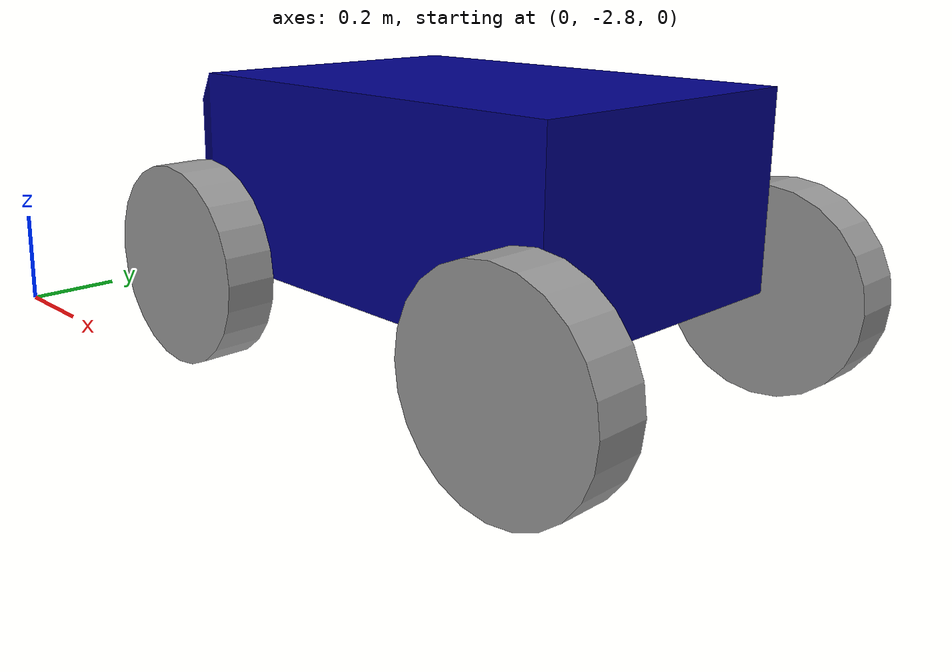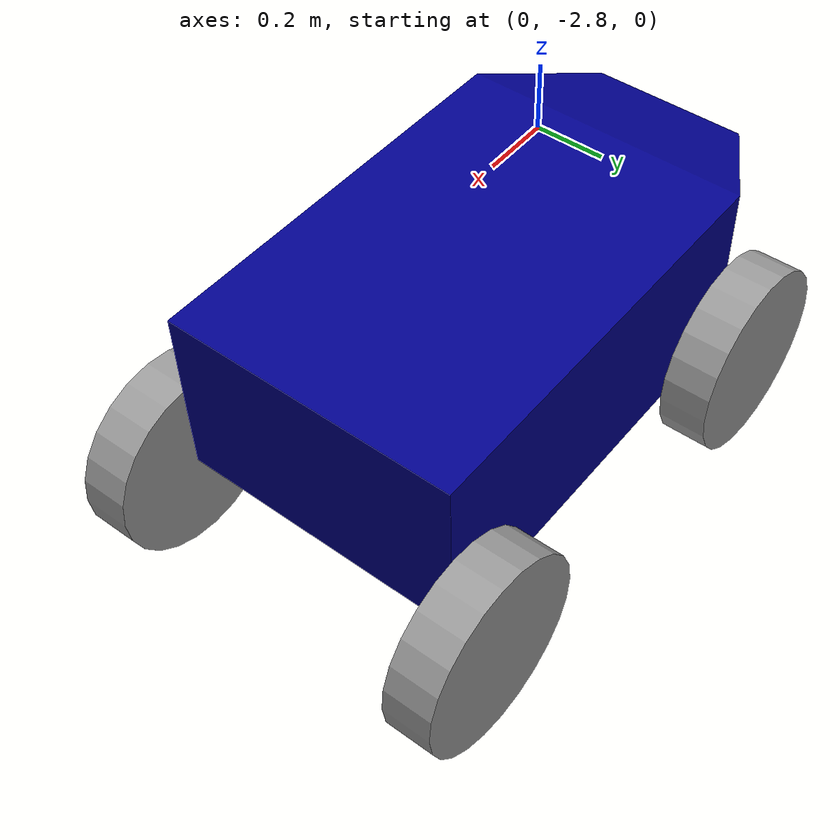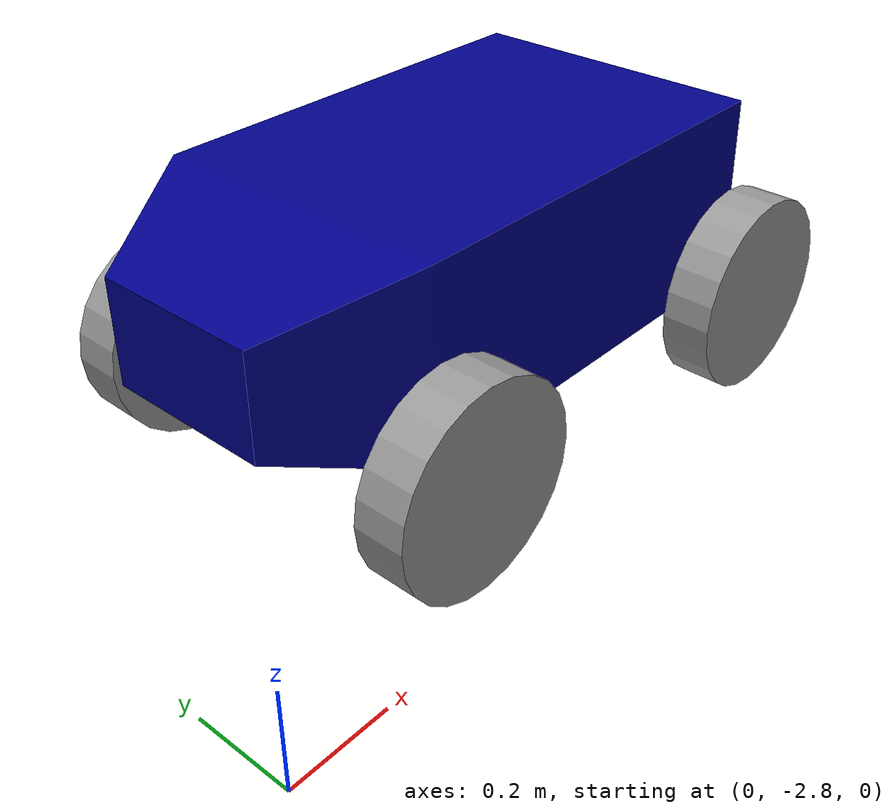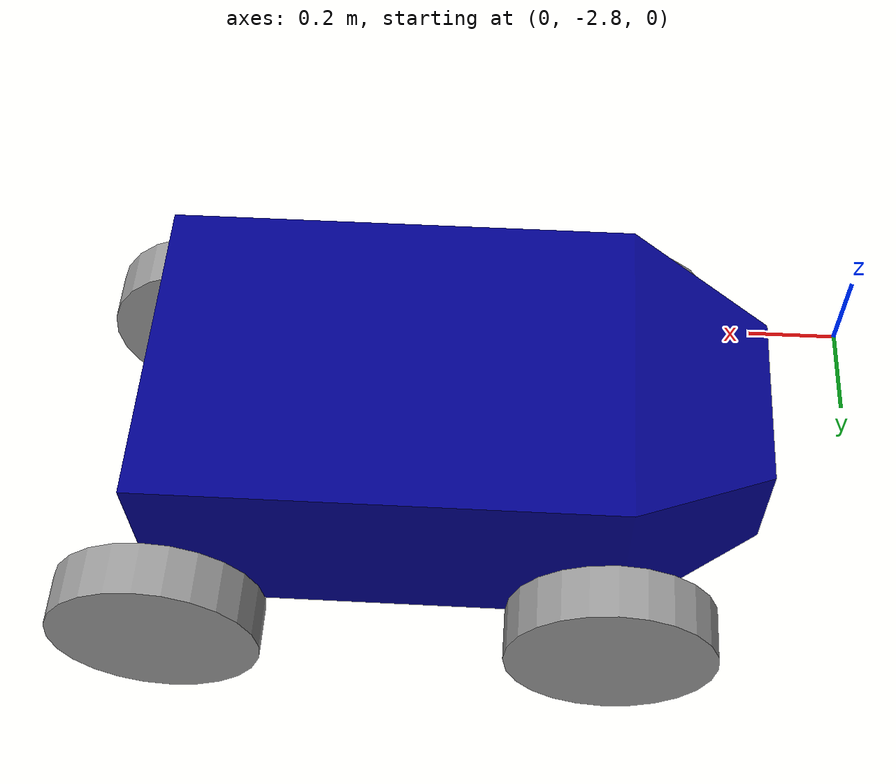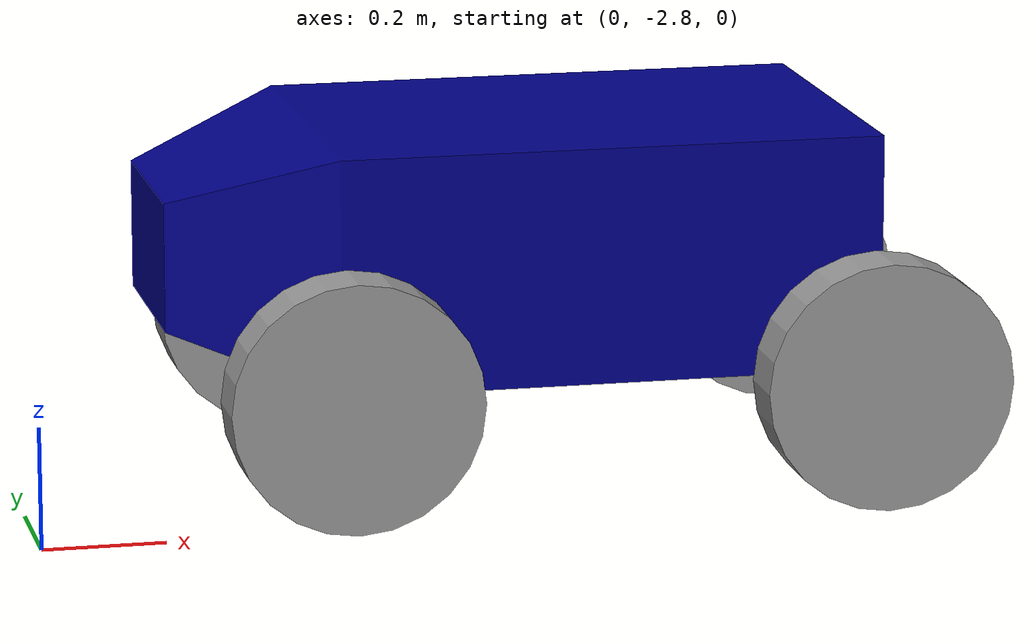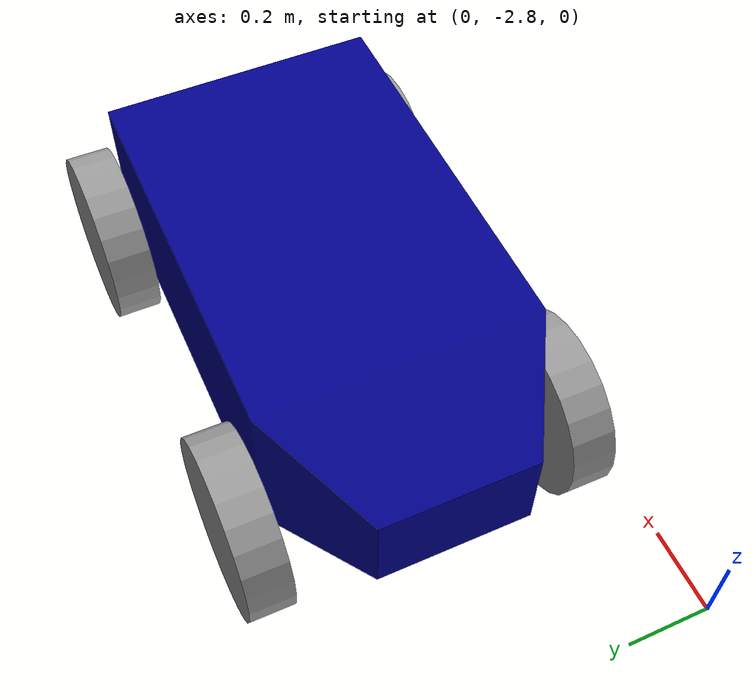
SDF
<?xml version='1.0'?>
<sdf version='1.6'>
  <model name='bot_submit'>
    <link name='link_0'>
      <inertial>
        <mass>1</mass>
        <inertia>
          <ixx>0.166667</ixx>
          <ixy>0</ixy>
          <ixz>0</ixz>
          <iyy>0.166667</iyy>
          <iyz>0</iyz>
          <izz>0.166667</izz>
        </inertia>
        <pose frame=''>0 0 0 0 -0 0</pose>
      </inertial>
      <pose frame=''>0.673498 -2.32623 0.29449 0 -0 0</pose>
      <gravity>1</gravity>
      <self_collide>0</self_collide>
      <kinematic>0</kinematic>
      <enable_wind>0</enable_wind>
      <visual name='visual'>
        <pose frame=''>0 0 0 0 -0 0</pose>
        <geometry>
          <mesh>
            <uri>/home/manjot/workspace/myrobot/model/chassy.dae</uri>
            <scale>0.1 0.1 0.1</scale>
          </mesh>
        </geometry>
        <material>
          <lighting>1</lighting>
          <script>
            <uri>file://media/materials/scripts/gazebo.material</uri>
            <name>Gazebo/Grey</name>
          </script>
          <ambient>0 0 0.545 1</ambient>
          <diffuse>0.7 0.7 0.7 1</diffuse>
          <specular>0.01 0.01 0.01 1</specular>
          <emissive>0 0 0 1</emissive>
          <shader type='vertex'>
            <normal_map>__default__</normal_map>
          </shader>
        </material>
        <transparency>0</transparency>
        <cast_shadows>1</cast_shadows>
      </visual>
      <collision name='collision'>
        <laser_retro>0</laser_retro>
        <max_contacts>10</max_contacts>
        <pose frame=''>0 0 0 0 -0 0</pose>
        <geometry>
          <mesh>
            <uri>/home/manjot/workspace/myrobot/model/chassy.dae</uri>
            <scale>0.1 0.1 0.1</scale>
          </mesh>
        </geometry>
        <surface>
          <friction>
            <ode>
              <mu>1</mu>
              <mu2>1</mu2>
              <fdir1>0 0 0</fdir1>
              <slip1>0</slip1>
              <slip2>0</slip2>
            </ode>
            <torsional>
              <coefficient>1</coefficient>
              <patch_radius>0</patch_radius>
              <surface_radius>0</surface_radius>
              <use_patch_radius>1</use_patch_radius>
              <ode>
                <slip>0</slip>
              </ode>
            </torsional>
          </friction>
          <bounce>
            <restitution_coefficient>0</restitution_coefficient>
            <threshold>1e+06</threshold>
          </bounce>
          <contact>
            <collide_without_contact>0</collide_without_contact>
            <collide_without_contact_bitmask>1</collide_without_contact_bitmask>
            <collide_bitmask>1</collide_bitmask>
            <ode>
              <soft_cfm>0</soft_cfm>
              <soft_erp>0.2</soft_erp>
              <kp>1e+13</kp>
              <kd>1</kd>
              <max_vel>0.01</max_vel>
              <min_depth>0</min_depth>
            </ode>
            <bullet>
              <split_impulse>1</split_impulse>
              <split_impulse_penetration_threshold>-0.01</split_impulse_penetration_threshold>
              <soft_cfm>0</soft_cfm>
              <soft_erp>0.2</soft_erp>
              <kp>1e+13</kp>
              <kd>1</kd>
            </bullet>
          </contact>
        </surface>
      </collision>
    </link>
    <link name='link_1'>
      <inertial>
        <mass>0.0183532</mass>
        <inertia>
          <ixx>0.00021776</ixx>
          <ixy>0</ixy>
          <ixz>0</ixz>
          <iyy>0.00021776</iyy>
          <iyz>0</iyz>
          <izz>0.00040197</izz>
        </inertia>
        <pose frame=''>0 0 0 0 -0 0</pose>
      </inertial>
      <pose frame=''>1.42416 -2.6605 0.162558 -1.5609 0 0</pose>
      <gravity>1</gravity>
      <self_collide>0</self_collide>
      <kinematic>0</kinematic>
      <enable_wind>0</enable_wind>
      <visual name='visual'>
        <pose frame=''>0 0 0 0 -0 0</pose>
        <geometry>
          <cylinder>
            <radius>0.209293</radius>
            <length>0.104734</length>
          </cylinder>
        </geometry>
        <material>
          <lighting>1</lighting>
          <script>
            <uri>file://media/materials/scripts/gazebo.material</uri>
            <name>Gazebo/Grey</name>
          </script>
          <shader type='vertex'>
            <normal_map>__default__</normal_map>
          </shader>
          <ambient>1 1 1 1</ambient>
          <diffuse>0.7 0.7 0.7 1</diffuse>
          <specular>0.01 0.01 0.01 1</specular>
          <emissive>0 0 0 1</emissive>
        </material>
        <transparency>0</transparency>
        <cast_shadows>1</cast_shadows>
      </visual>
      <collision name='collision'>
        <laser_retro>0</laser_retro>
        <max_contacts>10</max_contacts>
        <pose frame=''>0 0 0 0 -0 0</pose>
        <geometry>
          <cylinder>
            <radius>0.209293</radius>
            <length>0.104734</length>
          </cylinder>
        </geometry>
        <surface>
          <friction>
            <ode>
              <mu>1</mu>
              <mu2>1</mu2>
              <fdir1>0 0 0</fdir1>
              <slip1>0</slip1>
              <slip2>0</slip2>
            </ode>
            <torsional>
              <coefficient>1</coefficient>
              <patch_radius>0</patch_radius>
              <surface_radius>0</surface_radius>
              <use_patch_radius>1</use_patch_radius>
              <ode>
                <slip>0</slip>
              </ode>
            </torsional>
          </friction>
          <bounce>
            <restitution_coefficient>0</restitution_coefficient>
            <threshold>1e+06</threshold>
          </bounce>
          <contact>
            <collide_without_contact>0</collide_without_contact>
            <collide_without_contact_bitmask>1</collide_without_contact_bitmask>
            <collide_bitmask>1</collide_bitmask>
            <ode>
              <soft_cfm>0</soft_cfm>
              <soft_erp>0.2</soft_erp>
              <kp>1e+13</kp>
              <kd>1</kd>
              <max_vel>0.01</max_vel>
              <min_depth>0</min_depth>
            </ode>
            <bullet>
              <split_impulse>1</split_impulse>
              <split_impulse_penetration_threshold>-0.01</split_impulse_penetration_threshold>
              <soft_cfm>0</soft_cfm>
              <soft_erp>0.2</soft_erp>
              <kp>1e+13</kp>
              <kd>1</kd>
            </bullet>
          </contact>
        </surface>
      </collision>
    </link>
    <link name='link_1_clone'>
      <inertial>
        <mass>0.0183532</mass>
        <inertia>
          <ixx>0.00021776</ixx>
          <ixy>0</ixy>
          <ixz>0</ixz>
          <iyy>0.00021776</iyy>
          <iyz>0</iyz>
          <izz>0.00040197</izz>
        </inertia>
        <pose frame=''>0 0 0 0 -0 0</pose>
      </inertial>
      <pose frame=''>1.42871 -1.91406 0.172963 -1.5609 0 0</pose>
      <gravity>1</gravity>
      <self_collide>0</self_collide>
      <kinematic>0</kinematic>
      <enable_wind>0</enable_wind>
      <visual name='visual'>
        <pose frame=''>0 0 0 0 -0 0</pose>
        <geometry>
          <cylinder>
            <radius>0.209293</radius>
            <length>0.104734</length>
          </cylinder>
        </geometry>
        <material>
          <lighting>1</lighting>
          <script>
            <uri>file://media/materials/scripts/gazebo.material</uri>
            <name>Gazebo/Grey</name>
          </script>
          <shader type='vertex'>
            <normal_map>__default__</normal_map>
          </shader>
          <ambient>1 1 1 1</ambient>
          <diffuse>0.7 0.7 0.7 1</diffuse>
          <specular>0.01 0.01 0.01 1</specular>
          <emissive>0 0 0 1</emissive>
        </material>
        <transparency>0</transparency>
        <cast_shadows>1</cast_shadows>
      </visual>
      <collision name='collision'>
        <laser_retro>0</laser_retro>
        <max_contacts>10</max_contacts>
        <pose frame=''>0 0 0 0 -0 0</pose>
        <geometry>
          <cylinder>
            <radius>0.209293</radius>
            <length>0.104734</length>
          </cylinder>
        </geometry>
        <surface>
          <friction>
            <ode>
              <mu>1</mu>
              <mu2>1</mu2>
              <fdir1>0 0 0</fdir1>
              <slip1>0</slip1>
              <slip2>0</slip2>
            </ode>
            <torsional>
              <coefficient>1</coefficient>
              <patch_radius>0</patch_radius>
              <surface_radius>0</surface_radius>
              <use_patch_radius>1</use_patch_radius>
              <ode>
                <slip>0</slip>
              </ode>
            </torsional>
          </friction>
          <bounce>
            <restitution_coefficient>0</restitution_coefficient>
            <threshold>1e+06</threshold>
          </bounce>
          <contact>
            <collide_without_contact>0</collide_without_contact>
            <collide_without_contact_bitmask>1</collide_without_contact_bitmask>
            <collide_bitmask>1</collide_bitmask>
            <ode>
              <soft_cfm>0</soft_cfm>
              <soft_erp>0.2</soft_erp>
              <kp>1e+13</kp>
              <kd>1</kd>
              <max_vel>0.01</max_vel>
              <min_depth>0</min_depth>
            </ode>
            <bullet>
              <split_impulse>1</split_impulse>
              <split_impulse_penetration_threshold>-0.01</split_impulse_penetration_threshold>
              <soft_cfm>0</soft_cfm>
              <soft_erp>0.2</soft_erp>
              <kp>1e+13</kp>
              <kd>1</kd>
            </bullet>
          </contact>
        </surface>
      </collision>
    </link>
    <link name='link_1_clone_0'>
      <inertial>
        <mass>0.0183532</mass>
        <inertia>
          <ixx>0.00021776</ixx>
          <ixy>0</ixy>
          <ixz>0</ixz>
          <iyy>0.00021776</iyy>
          <iyz>0</iyz>
          <izz>0.00040197</izz>
        </inertia>
        <pose frame=''>0 0 0 0 -0 0</pose>
      </inertial>
      <pose frame=''>0.529696 -2.66818 0.176482 -1.5609 0 0</pose>
      <gravity>1</gravity>
      <self_collide>0</self_collide>
      <kinematic>0</kinematic>
      <enable_wind>0</enable_wind>
      <visual name='visual'>
        <pose frame=''>0 0 0 0 -0 0</pose>
        <geometry>
          <cylinder>
            <radius>0.209293</radius>
            <length>0.104734</length>
          </cylinder>
        </geometry>
        <material>
          <lighting>1</lighting>
          <script>
            <uri>file://media/materials/scripts/gazebo.material</uri>
            <name>Gazebo/Grey</name>
          </script>
          <shader type='vertex'>
            <normal_map>__default__</normal_map>
          </shader>
          <ambient>1 1 1 1</ambient>
          <diffuse>0.7 0.7 0.7 1</diffuse>
          <specular>0.01 0.01 0.01 1</specular>
          <emissive>0 0 0 1</emissive>
        </material>
        <transparency>0</transparency>
        <cast_shadows>1</cast_shadows>
      </visual>
      <collision name='collision'>
        <laser_retro>0</laser_retro>
        <max_contacts>10</max_contacts>
        <pose frame=''>0 0 0 0 -0 0</pose>
        <geometry>
          <cylinder>
            <radius>0.209293</radius>
            <length>0.104734</length>
          </cylinder>
        </geometry>
        <surface>
          <friction>
            <ode>
              <mu>1</mu>
              <mu2>1</mu2>
              <fdir1>0 0 0</fdir1>
              <slip1>0</slip1>
              <slip2>0</slip2>
            </ode>
            <torsional>
              <coefficient>1</coefficient>
              <patch_radius>0</patch_radius>
              <surface_radius>0</surface_radius>
              <use_patch_radius>1</use_patch_radius>
              <ode>
                <slip>0</slip>
              </ode>
            </torsional>
          </friction>
          <bounce>
            <restitution_coefficient>0</restitution_coefficient>
            <threshold>1e+06</threshold>
          </bounce>
          <contact>
            <collide_without_contact>0</collide_without_contact>
            <collide_without_contact_bitmask>1</collide_without_contact_bitmask>
            <collide_bitmask>1</collide_bitmask>
            <ode>
              <soft_cfm>0</soft_cfm>
              <soft_erp>0.2</soft_erp>
              <kp>1e+13</kp>
              <kd>1</kd>
              <max_vel>0.01</max_vel>
              <min_depth>0</min_depth>
            </ode>
            <bullet>
              <split_impulse>1</split_impulse>
              <split_impulse_penetration_threshold>-0.01</split_impulse_penetration_threshold>
              <soft_cfm>0</soft_cfm>
              <soft_erp>0.2</soft_erp>
              <kp>1e+13</kp>
              <kd>1</kd>
            </bullet>
          </contact>
        </surface>
      </collision>
    </link>
    <link name='link_1_clone_1'>
      <inertial>
        <mass>0.0183532</mass>
        <inertia>
          <ixx>0.00021776</ixx>
          <ixy>0</ixy>
          <ixz>0</ixz>
          <iyy>0.00021776</iyy>
          <iyz>0</iyz>
          <izz>0.00040197</izz>
        </inertia>
        <pose frame=''>0 0 0 0 -0 0</pose>
      </inertial>
      <pose frame=''>0.535249 -1.91395 0.17418 -1.5609 0 0</pose>
      <gravity>1</gravity>
      <self_collide>0</self_collide>
      <kinematic>0</kinematic>
      <enable_wind>0</enable_wind>
      <visual name='visual'>
        <pose frame=''>0 0 0 0 -0 0</pose>
        <geometry>
          <cylinder>
            <radius>0.209293</radius>
            <length>0.104734</length>
          </cylinder>
        </geometry>
        <material>
          <lighting>1</lighting>
          <script>
            <uri>file://media/materials/scripts/gazebo.material</uri>
            <name>Gazebo/Grey</name>
          </script>
          <shader type='vertex'>
            <normal_map>__default__</normal_map>
          </shader>
          <ambient>1 1 1 1</ambient>
          <diffuse>0.7 0.7 0.7 1</diffuse>
          <specular>0.01 0.01 0.01 1</specular>
          <emissive>0 0 0 1</emissive>
        </material>
        <transparency>0</transparency>
        <cast_shadows>1</cast_shadows>
      </visual>
      <collision name='collision'>
        <laser_retro>0</laser_retro>
        <max_contacts>10</max_contacts>
        <pose frame=''>0 0 0 0 -0 0</pose>
        <geometry>
          <cylinder>
            <radius>0.209293</radius>
            <length>0.104734</length>
          </cylinder>
        </geometry>
        <surface>
          <friction>
            <ode>
              <mu>1</mu>
              <mu2>1</mu2>
              <fdir1>0 0 0</fdir1>
              <slip1>0</slip1>
              <slip2>0</slip2>
            </ode>
            <torsional>
              <coefficient>1</coefficient>
              <patch_radius>0</patch_radius>
              <surface_radius>0</surface_radius>
              <use_patch_radius>1</use_patch_radius>
              <ode>
                <slip>0</slip>
              </ode>
            </torsional>
          </friction>
          <bounce>
            <restitution_coefficient>0</restitution_coefficient>
            <threshold>1e+06</threshold>
          </bounce>
          <contact>
            <collide_without_contact>0</collide_without_contact>
            <collide_without_contact_bitmask>1</collide_without_contact_bitmask>
            <collide_bitmask>1</collide_bitmask>
            <ode>
              <soft_cfm>0</soft_cfm>
              <soft_erp>0.2</soft_erp>
              <kp>1e+13</kp>
              <kd>1</kd>
              <max_vel>0.01</max_vel>
              <min_depth>0</min_depth>
            </ode>
            <bullet>
              <split_impulse>1</split_impulse>
              <split_impulse_penetration_threshold>-0.01</split_impulse_penetration_threshold>
              <soft_cfm>0</soft_cfm>
              <soft_erp>0.2</soft_erp>
              <kp>1e+13</kp>
              <kd>1</kd>
            </bullet>
          </contact>
        </surface>
      </collision>
    </link>
    <joint name='link_0_JOINT_0' type='revolute'>
      <parent>link_0</parent>
      <child>link_1</child>
      <pose frame=''>0 0 0 0 -0 0</pose>
      <axis>
        <xyz>0 0 1</xyz>
        <use_parent_model_frame>0</use_parent_model_frame>
        <limit>
          <lower>-1.79769e+308</lower>
          <upper>1.79769e+308</upper>
          <effort>-1</effort>
          <velocity>-1</velocity>
        </limit>
        <dynamics>
          <spring_reference>0</spring_reference>
          <spring_stiffness>0</spring_stiffness>
          <damping>0</damping>
        </dynamics>
      </axis>
      <physics>
        <ode>
          <limit>
            <cfm>0</cfm>
            <erp>0.2</erp>
          </limit>
          <suspension>
            <cfm>0</cfm>
            <erp>0.2</erp>
          </suspension>
        </ode>
      </physics>
    </joint>
    <joint name='link_0_JOINT_2' type='revolute'>
      <parent>link_0</parent>
      <child>link_1_clone_0</child>
      <pose frame=''>0 0 0 0 -0 0</pose>
      <axis>
        <xyz>0 0 1</xyz>
        <use_parent_model_frame>0</use_parent_model_frame>
        <limit>
          <lower>-1.79769e+308</lower>
          <upper>1.79769e+308</upper>
          <effort>-1</effort>
          <velocity>-1</velocity>
        </limit>
        <dynamics>
          <spring_reference>0</spring_reference>
          <spring_stiffness>0</spring_stiffness>
          <damping>0</damping>
        </dynamics>
      </axis>
      <physics>
        <ode>
          <limit>
            <cfm>0</cfm>
            <erp>0.2</erp>
          </limit>
          <suspension>
            <cfm>0</cfm>
            <erp>0.2</erp>
          </suspension>
        </ode>
      </physics>
    </joint>
    <joint name='link_0_JOINT_3' type='revolute'>
      <parent>link_0</parent>
      <child>link_1_clone</child>
      <pose frame=''>0 0 0 0 -0 0</pose>
      <axis>
        <xyz>-0 -0 -1</xyz>
        <use_parent_model_frame>0</use_parent_model_frame>
        <limit>
          <lower>-1.79769e+308</lower>
          <upper>1.79769e+308</upper>
          <effort>-1</effort>
          <velocity>-1</velocity>
        </limit>
        <dynamics>
          <spring_reference>0</spring_reference>
          <spring_stiffness>0</spring_stiffness>
          <damping>0</damping>
        </dynamics>
      </axis>
      <physics>
        <ode>
          <limit>
            <cfm>0</cfm>
            <erp>0.2</erp>
          </limit>
          <suspension>
            <cfm>0</cfm>
            <erp>0.2</erp>
          </suspension>
        </ode>
      </physics>
    </joint>
    <joint name='link_0_JOINT_4' type='revolute'>
      <parent>link_0</parent>
      <child>link_1_clone_1</child>
      <pose frame=''>0 0 0 0 -0 0</pose>
      <axis>
        <xyz>-0 -0 -1</xyz>
        <use_parent_model_frame>0</use_parent_model_frame>
        <limit>
          <lower>-1.79769e+308</lower>
          <upper>1.79769e+308</upper>
          <effort>-1</effort>
          <velocity>-1</velocity>
        </limit>
        <dynamics>
          <spring_reference>0</spring_reference>
          <spring_stiffness>0</spring_stiffness>
          <damping>0</damping>
        </dynamics>
      </axis>
      <physics>
        <ode>
          <limit>
            <cfm>0</cfm>
            <erp>0.2</erp>
          </limit>
          <suspension>
            <cfm>0</cfm>
            <erp>0.2</erp>
          </suspension>
        </ode>
      </physics>
    </joint>
    <static>0</static>
    <allow_auto_disable>1</allow_auto_disable>
  </model>
</sdf>
